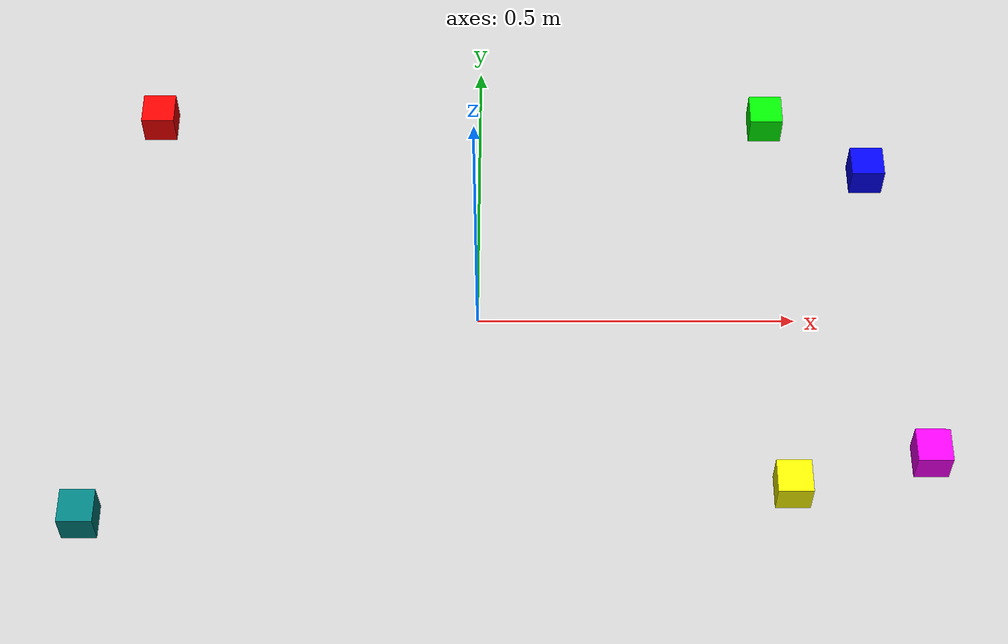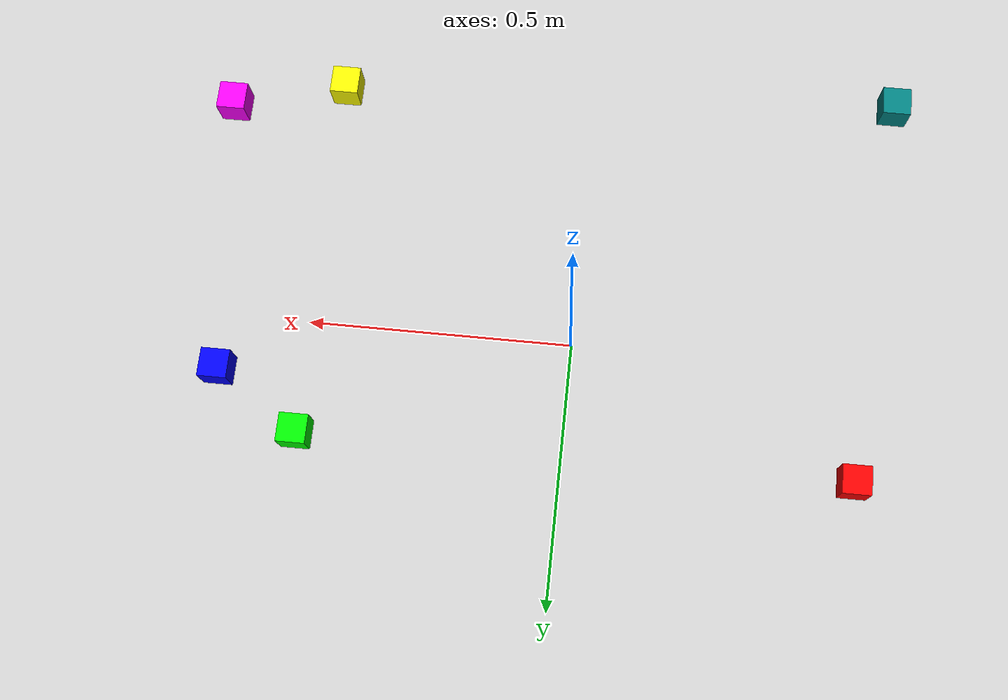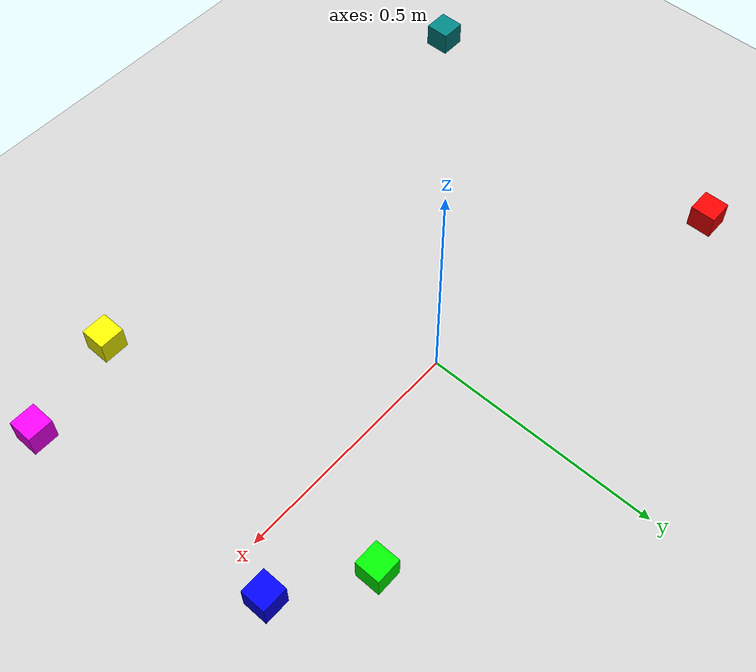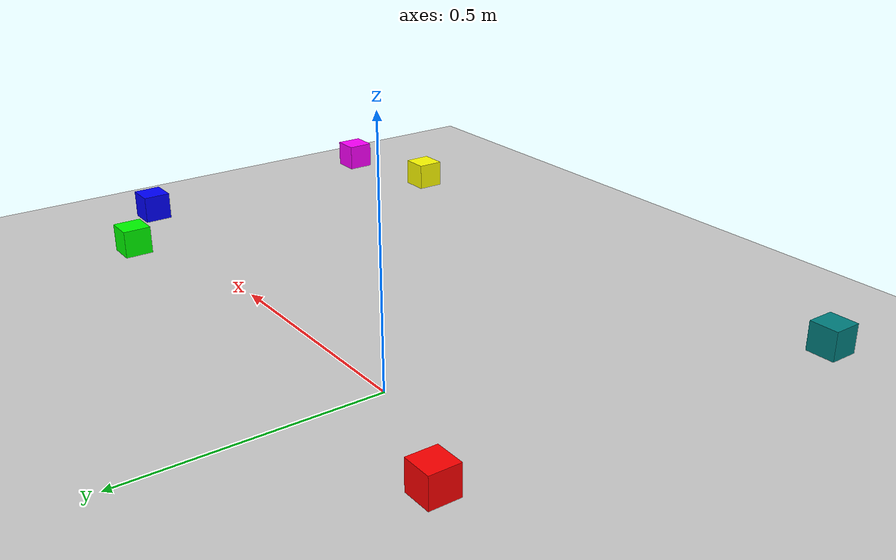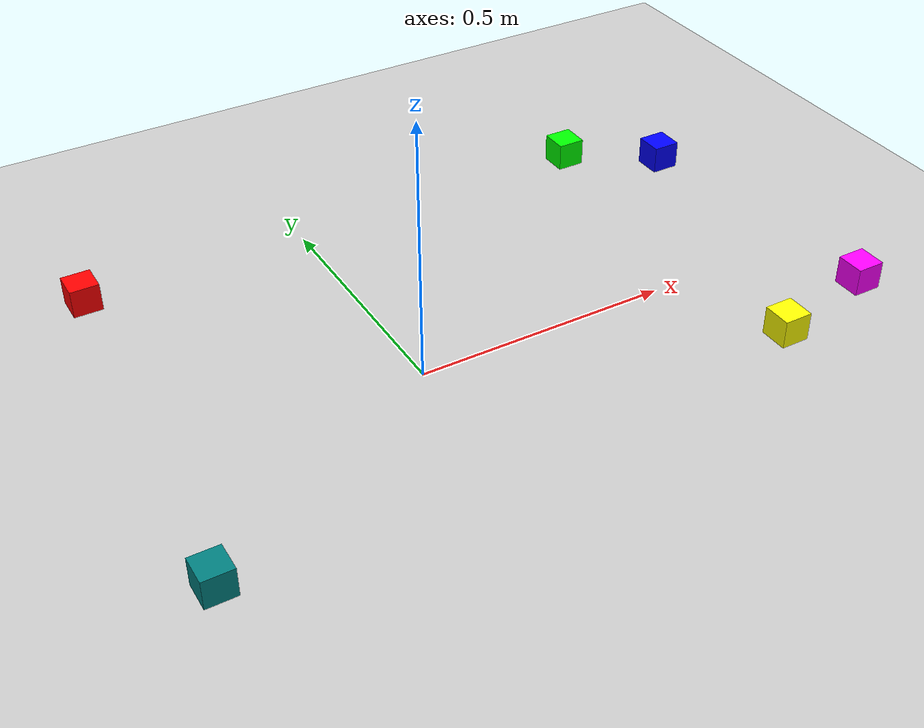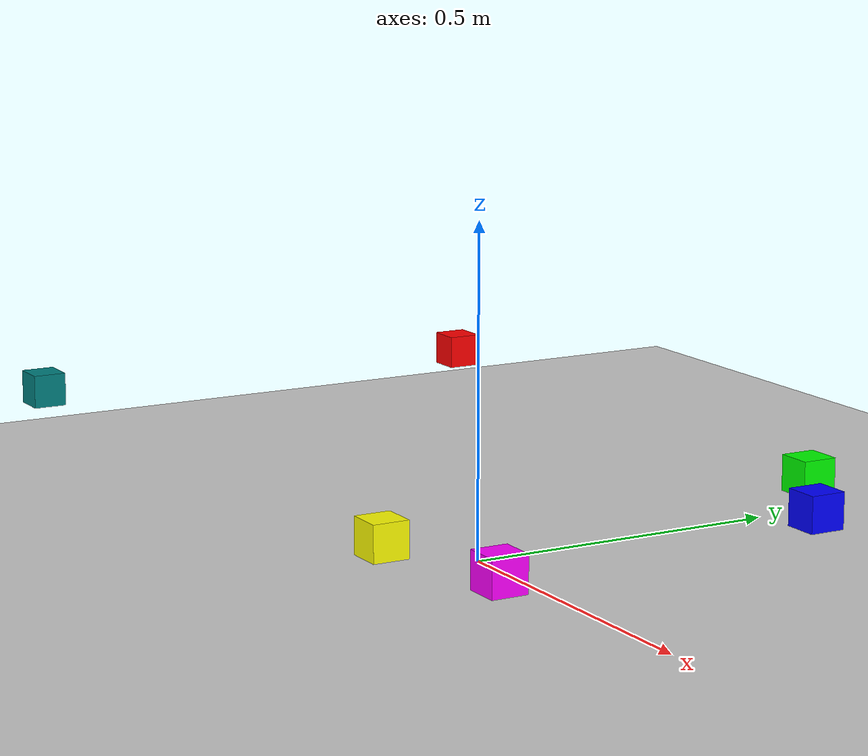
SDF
<sdf version="1.6">
  <world name="empty">
    <physics name="1ms" type="ignored">
      <max_step_size>0.01</max_step_size>
      <real_time_factor>1.0</real_time_factor>
    </physics>
    <plugin
      filename="gz-sim-physics-system"
      name="gz::sim::systems::Physics">
    </plugin>
    <plugin
      filename="gz-sim-user-commands-system"
      name="gz::sim::systems::UserCommands">
    </plugin>
    <plugin
      filename="gz-sim-scene-broadcaster-system"
      name="gz::sim::systems::SceneBroadcaster">
    </plugin>
    <plugin
      filename="gz-sim-contact-system"
      name="gz::sim::systems::Contact">
    </plugin>

    <light type="directional" name="sun">
      <cast_shadows>false</cast_shadows>
      <pose>0 0 10 0 0 0</pose>
      <attenuation>
        <range>1000</range>
        <constant>1</constant>
        <linear>1</linear>
        <quadratic>0.001</quadratic>
      </attenuation>
      <direction>-0.5 0.1 -0.9</direction>
    </light>

    <model name="ground_plane">
      <static>true</static>0.6000
      <link name="link">
        <collision name="collision">
          <geometry>
            <plane>
              <normal>0 0 1</normal>
              <size>100 100</size>
            </plane>
          </geometry>
        </collision>
        <visual name="visual">
          <geometry>
            <plane>
              <normal>0 0 1</normal>
              <size>100 100</size>
            </plane>
          </geometry>
          <material>
            <ambient>0.8 0.8 0.8 1</ambient>
            <diffuse>0.8 0.8 0.8 1</diffuse>
            <specular>0.8 0.8 0.8 1</specular>
          </material>
        </visual>
      </link>
    </model>

    <!-- Box 1-->
    <!-- 0.2 on Z in pose is just to make the box spawn correctly, otherwise it would be in between the ground -->
    <!-- Box reference frame is at its centre so it is 0.05, then the reference frame is at 0.025 in all axis wrt this reference frame -->
    <model name="box1">
        <pose>-0.5 0.25 0.2 0 0 0</pose>
        <link name="box1_link">
            <inertial>
                <inertia>
                    <ixx>0.00005</ixx>
                    <ixy>0.0</ixy>
                    <ixz>0.0</ixz>
                    <iyy>0.00005</iyy>
                    <iyz>0.0</iyz>
                    <izz>0.00005</izz>
                </inertia>
                <mass>0.12</mass>
            </inertial>
            <collision name="box1_collision">
                <geometry>
                    <box>
                        <size>0.05 0.05 0.05</size>
                    </box>
                </geometry>
            </collision>
            <visual name="box1_visual">
                <geometry>
                    <box>
                        <size>0.05 0.05 0.05</size>
                    </box>
                </geometry>
                <material>
                    <ambient>1 0 0 1</ambient>
                    <diffuse>1 0 0 1</diffuse>
                    <specular>1 0 0 1</specular>
                </material>
            </visual>
        </link>
        <!-- Pose publisher plugin, used to determine the target pose to reach -->
     <plugin filename="gz-sim-pose-publisher-system"
            name="gz::sim::systems::PosePublisher">
      <topic>/model/box1/pose</topic>
      <publish_frequency>100</publish_frequency>
       <publish_nested_model_pose>true</publish_nested_model_pose>
            <publish_link_pose>false</publish_link_pose>
            <publish_collision_pose>false</publish_collision_pose>
            <publish_visual_pose>false</publish_visual_pose>
    </plugin>
    </model>

    <!-- Box 2-->
    <model name="box2">
        <pose>0.6 0.15 0.2 0 0 0</pose>
        <link name="box2_link">
            <inertial>
                <inertia>
                    <ixx>0.00005</ixx>
                    <ixy>0.0</ixy>
                    <ixz>0.0</ixz>
                    <iyy>0.00005</iyy>
                    <iyz>0.0</iyz>
                    <izz>0.00005</izz>
                </inertia>
                <mass>0.12</mass>
            </inertial>
            <collision name="box2_collision">
                <geometry>
                    <box>
                        <size>0.05 0.05 0.05</size>
                    </box>
                </geometry>
            </collision>
            <visual name="box2_visual">
                <geometry>
                    <box>
                        <size>0.05 0.05 0.05</size>
                    </box>
                </geometry>
                <material>
                    <ambient>0 0 1 1</ambient>
                    <diffuse>0 0 1 1</diffuse>
                    <specular>0 0 1 1</specular>
                </material>
            </visual>
        </link>
        <!-- Pose publisher plugin, used to determine the target pose to reach -->
      <plugin filename="gz-sim-pose-publisher-system"
            name="gz::sim::systems::PosePublisher">
      <topic>/model/box2/pose</topic>
      <publish_frequency>10</publish_frequency>
       <publish_nested_model_pose>true</publish_nested_model_pose>
            <publish_link_pose>false</publish_link_pose>
            <publish_collision_pose>false</publish_collision_pose>
            <publish_visual_pose>false</publish_visual_pose>
    </plugin>
    </model>

    <!-- Box 3-->
    <model name="box3">
        <pose>0.45 0.25 0.2 0 0 0</pose>
        <link name="box3_link">
            <inertial>
                <inertia>
                    <ixx>0.00005</ixx>
                    <ixy>0.0</ixy>
                    <ixz>0.0</ixz>
                    <iyy>0.00005</iyy>
                    <iyz>0.0</iyz>
                    <izz>0.00005</izz>
                </inertia>
                <mass>0.12</mass>
            </inertial>
            <collision name="box3_collision">
                <geometry>
                    <box>
                        <size>0.05 0.05 0.05</size>
                    </box>
                </geometry>
            </collision>
            <visual name="box3_visual">
                <geometry>
                    <box>
                        <size>0.05 0.05 0.05</size>
                    </box>
                </geometry>
                <material>
                    <ambient>0 1 0 1</ambient>
                    <diffuse>0 1 0 1</diffuse>
                    <specular>0 1 0 1</specular>
                </material>
            </visual>
        </link>
        <!-- Pose publisher plugin, used to determine the target pose to reach -->
        <plugin filename="gz-sim-pose-publisher-system"
            name="gz::sim::systems::PosePublisher">
            <topic>/model/box3/pose</topic>
      <publish_frequency>100</publish_frequency>
            <publish_nested_model_pose>true</publish_nested_model_pose>
            <publish_link_pose>false</publish_link_pose>
            <publish_collision_pose>false</publish_collision_pose>
            <publish_visual_pose>false</publish_visual_pose>
        </plugin>
    </model>

    <!-- Box 4-->
    <model name="box4">
        <pose>-0.55 -0.45 0.2 0 0 0</pose>
        <link name="box4_link">
            <inertial>
                <inertia>
                    <ixx>0.00005</ixx>
                    <ixy>0.0</ixy>
                    <ixz>0.0</ixz>
                    <iyy>0.00005</iyy>
                    <iyz>0.0</iyz>
                    <izz>0.00005</izz>
                </inertia>
                <mass>0.12</mass>
            </inertial>
            <collision name="box4_collision">
                <geometry>
                    <box>
                        <size>0.05 0.05 0.05</size>
                    </box>
                </geometry>
            </collision>
            <visual name="box4_visual">
                <geometry>
                    <box>
                        <size>0.05 0.05 0.05</size>
                    </box>
                </geometry>
                <material>
                    <ambient>0 0.5 0.5 1</ambient>
                    <diffuse>0 0.5 0.5 1</diffuse>
                    <specular>0 0.5 0.5 1</specular>
                </material>
            </visual>
        </link>
        <!-- Pose publisher plugin, used to determine the target pose to reach -->
        <plugin filename="gz-sim-pose-publisher-system"
            name="gz::sim::systems::PosePublisher">
            <topic>/model/box4/pose</topic>
      <publish_frequency>100</publish_frequency>
            <publish_nested_model_pose>true</publish_nested_model_pose>
            <publish_link_pose>false</publish_link_pose>
            <publish_collision_pose>false</publish_collision_pose>
            <publish_visual_pose>false</publish_visual_pose>
        </plugin>
    </model>

    <!-- Box 5-->
    <model name="box5">
        <pose>0.45 -0.4 0.2 0 0 0</pose>
        <link name="box5_link">
            <inertial>
                <inertia>
                    <ixx>0.00005</ixx>
                    <ixy>0.0</ixy>
                    <ixz>0.0</ixz>
                    <iyy>0.00005</iyy>
                    <iyz>0.0</iyz>
                    <izz>0.00005</izz>
                </inertia>
                <mass>0.12</mass>
            </inertial>
            <collision name="box5_collision">
                <geometry>
                    <box>
                        <size>0.05 0.05 0.05</size>
                    </box>
                </geometry>
            </collision>
            <visual name="box5_visual">
                <geometry>
                    <box>
                        <size>0.05 0.05 0.05</size>
                    </box>
                </geometry>
                <material>
                    <ambient>1 1 0 1</ambient>
                    <diffuse>1 1 0 1</diffuse>
                    <specular>1 1 0 1</specular>
                </material>
            </visual>
        </link>
        <!-- Pose publisher plugin, used to determine the target pose to reach -->
        <plugin filename="gz-sim-pose-publisher-system"
            name="gz::sim::systems::PosePublisher">
            <topic>/model/box5/pose</topic>
      <publish_frequency>100</publish_frequency>
            <publish_nested_model_pose>true</publish_nested_model_pose>
            <publish_link_pose>false</publish_link_pose>
            <publish_collision_pose>false</publish_collision_pose>
            <publish_visual_pose>false</publish_visual_pose>
        </plugin>
    </model>

    <!-- Box 5-->
    <model name="box6">
        <pose>0.65 -0.35 0.2 0 0 0</pose>
        <link name="box6_link">
            <inertial>
                <inertia>
                    <ixx>0.00005</ixx>
                    <ixy>0.0</ixy>
                    <ixz>0.0</ixz>
                    <iyy>0.00005</iyy>
                    <iyz>0.0</iyz>
                    <izz>0.00005</izz>
                </inertia>
                <mass>0.12</mass>
            </inertial>
            <collision name="box6_collision">
                <geometry>
                    <box>
                        <size>0.05 0.05 0.05</size>
                    </box>
                </geometry>
            </collision>
            <visual name="box6_visual">
                <geometry>
                    <box>
                        <size>0.05 0.05 0.05</size>
                    </box>
                </geometry>
                <material>
                    <ambient>1 0 1 1</ambient>
                    <diffuse>1 0 1 1</diffuse>
                    <specular>1 0 1 1</specular>
                </material>
            </visual>
        </link>
        <!-- Pose publisher plugin, used to determine the target pose to reach -->
        <plugin filename="gz-sim-pose-publisher-system"
            name="gz::sim::systems::PosePublisher">
            <topic>/model/box6/pose</topic>
      <publish_frequency>100</publish_frequency>
            <publish_nested_model_pose>true</publish_nested_model_pose>
            <publish_link_pose>false</publish_link_pose>
            <publish_collision_pose>false</publish_collision_pose>
            <publish_visual_pose>false</publish_visual_pose>
        </plugin>
    </model>

  </world>
</sdf>
